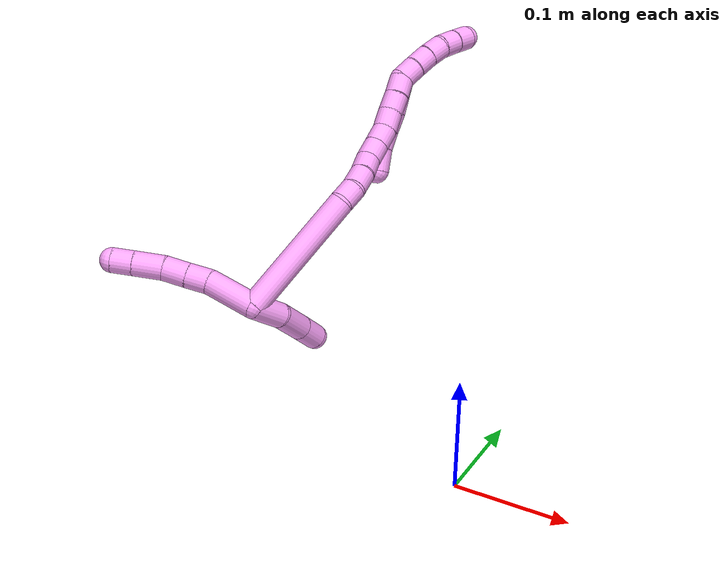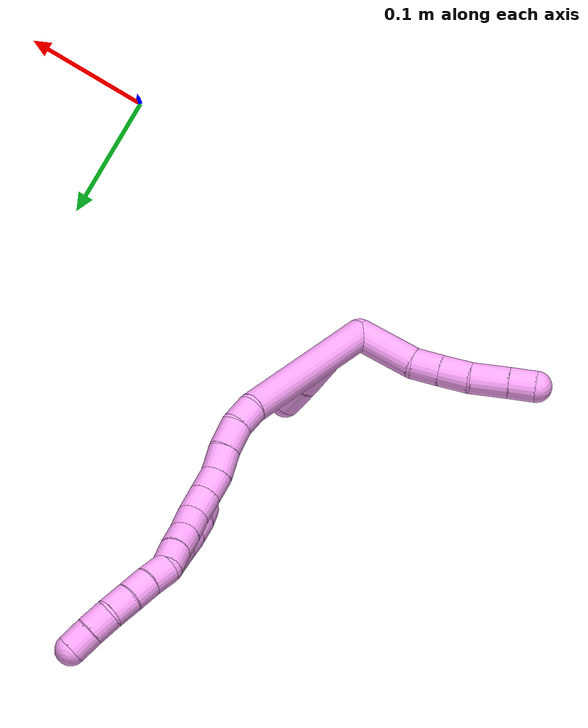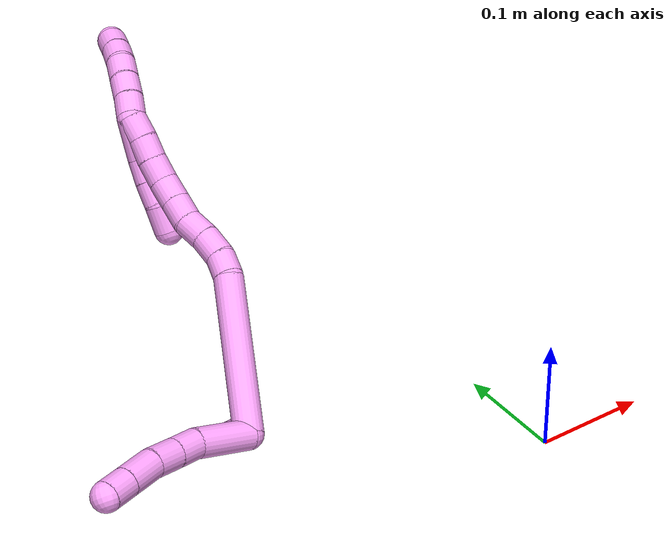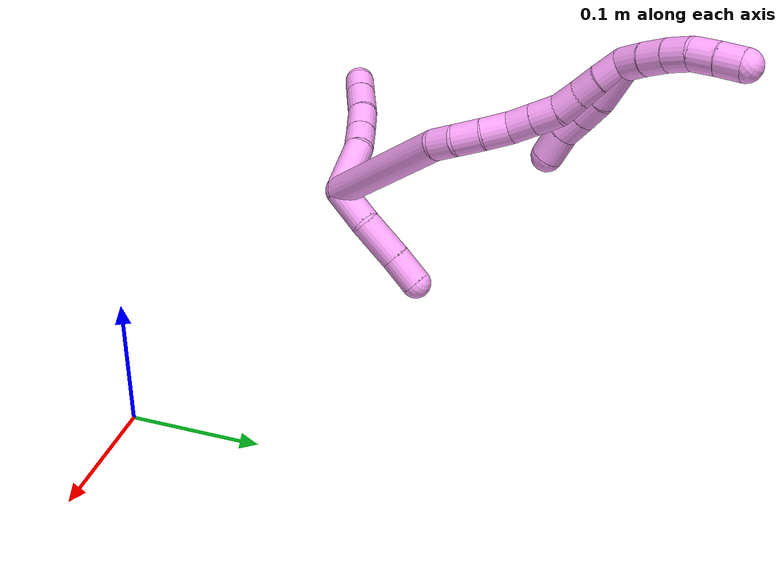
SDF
<sdf version="1.7">
 <world name="default">
  <model name="photoneo_s_sensor">
   <static>1</static>
   <pose>0 0 2 1.57079 1.57079 3.14159</pose>
   <link name="link">
    <inertial><mass>0.1</mass></inertial>
    <sensor name="sensor" type="depth">
     <update_rate>30</update_rate>
     <camera>
      <horizontal_fov>1.22</horizontal_fov>
      <image><width>1920</width><height>1200</height><format>B8G8R8</format></image>
      <clip><near>0.1</near><far>4</far></clip>
      <depth_camera><output>points</output></depth_camera>
     </camera>
     <plugin name="camera_plugin" filename="libgazebo_ros_depth_camera.so">
      <baseline>0.2</baseline>
      <alwaysOn>1</alwaysOn>
      <updateRate>0.0</updateRate>
      <cameraName>camera_ir</cameraName>
      <imageTopicName>/camera/color/image_raw</imageTopicName>
      <cameraInfoTopicName>/camera/color/camera_info</cameraInfoTopicName>
      <depthImageTopicName>/camera/depth/image_raw</depthImageTopicName>
      <depthImageCameraInfoTopicName>/camera/depth/camera_info</depthImageCameraInfoTopicName>
      <pointCloudTopicName>/camera/depth/points</pointCloudTopicName>
      <frameName>fr_optical</frameName>
      <pointCloudCutoff>0.1</pointCloudCutoff>
      <pointCloudCutoffMax>2.0</pointCloudCutoffMax>
      <distortionK1>0</distortionK1>
      <distortionK2>0</distortionK2>
      <distortionK3>0</distortionK3>
      <distortionT1>0</distortionT1>
      <distortionT2>0</distortionT2>
      <CxPrime>0</CxPrime>
      <Cx>0</Cx>
      <Cy>0</Cy>
      <focalLength>0</focalLength>
      <hackBaseline>0</hackBaseline>
     </plugin>
    </sensor>
   </link>
  </model>
  <model name="bin">
   <static>1</static>
   <link name="bottom">
    <collision name="collision-bottom">
     <pose>0 0 -0.01 0 -0 0</pose>
     <geometry><box><size>0.8 0.6 0.02</size></box></geometry>
     <surface>
      <friction><ode><mu>100</mu><mu2>100</mu2></ode></friction>
      <contact><collide_bitmask>65535</collide_bitmask></contact>
     </surface>
    </collision>
   </link>
   <link name="west_wall">
    <collision name="collision-west_wall">
     <pose>-0.41 0 0.1 0 -0 0</pose>
     <geometry><box><size>0.02 0.6 0.2</size></box></geometry>
     <surface>
      <friction><ode><mu>100</mu><mu2>100</mu2></ode></friction>
      <contact><collide_bitmask>65535</collide_bitmask></contact>
     </surface>
    </collision>
   </link>
   <link name="east_wall">
    <collision name="collision-east_wall">
     <pose>0.41 0 0.1 0 -0 0</pose>
     <geometry><box><size>0.02 0.6 0.2</size></box></geometry>
     <surface>
      <friction><ode><mu>100</mu><mu2>100</mu2></ode></friction>
      <contact><collide_bitmask>65535</collide_bitmask></contact>
     </surface>
    </collision>
   </link>
   <link name="south_wall">
    <collision name="collision-south_wall">
     <pose>0 -0.31 0.1 0 -0 0</pose>
     <geometry><box><size>0.8 0.02 0.2</size></box></geometry>
     <surface>
      <friction><ode><mu>100</mu><mu2>100</mu2></ode></friction>
      <contact><collide_bitmask>65535</collide_bitmask></contact>
     </surface>
    </collision>
   </link>
   <link name="north_wall">
    <collision name="collision-north_wall">
     <pose>0 0.31 0.1 0 -0 0</pose>
     <geometry><box><size>0.8 0.02 0.2</size></box></geometry>
     <surface>
      <friction><ode><mu>100</mu><mu2>100</mu2></ode></friction>
      <contact><collide_bitmask>65535</collide_bitmask></contact>
     </surface>
    </collision>
   </link>
  </model>
  <model name="4">
   <static>0</static>
   <link name="4">
    <collision name="collision-cylinder-e_1_2_8">
     <pose>-0.022665 -0.010668 -0.003351 1.87515 -1.11249 -1.40547</pose>
     <geometry><cylinder><radius>0.0125</radius><length>0.050547</length></cylinder></geometry>
     <surface>
      <friction><ode><mu>1.16</mu><mu2>1.16</mu2><slip1>0</slip1><slip2>0</slip2></ode></friction>
      <contact><ode><kp>1e+06</kp><kd>1</kd><max_vel>0</max_vel><min_depth>0.001</min_depth></ode></contact>
     </surface>
    </collision>
    <visual name="visual-cylinder-e_1_2_8">
     <pose>-0.022665 -0.010668 -0.003351 1.87515 -1.11249 -1.40547</pose>
     <geometry><cylinder><radius>0.0125</radius><length>0.050547</length></cylinder></geometry>
     <material><ambient>1 0.65098 0.996078 1</ambient></material>
    </visual>
    <collision name="collision-cylinder-e_2_8_9">
     <pose>-0.056059 -0.025058 -0.005591 1.28084 -1.22342 -0.963332</pose>
     <geometry><cylinder><radius>0.0125</radius><length>0.022819</length></cylinder></geometry>
     <surface>
      <friction><ode><mu>1.16</mu><mu2>1.16</mu2><slip1>0</slip1><slip2>0</slip2></ode></friction>
      <contact><ode><kp>1e+06</kp><kd>1</kd><max_vel>0</max_vel><min_depth>0.001</min_depth></ode></contact>
     </surface>
    </collision>
    <visual name="visual-cylinder-e_2_8_9">
     <pose>-0.056059 -0.025058 -0.005591 1.28084 -1.22342 -0.963332</pose>
     <geometry><cylinder><radius>0.0125</radius><length>0.022819</length></cylinder></geometry>
     <material><ambient>1 0.65098 0.996078 1</ambient></material>
    </visual>
    <collision name="collision-cylinder-e_3_9_10">
     <pose>-0.0785 -0.032359 -0.00348 1.29804 -1.26359 -1.0137</pose>
     <geometry><cylinder><radius>0.0125</radius><length>0.024578</length></cylinder></geometry>
     <surface>
      <friction><ode><mu>1.16</mu><mu2>1.16</mu2><slip1>0</slip1><slip2>0</slip2></ode></friction>
      <contact><ode><kp>1e+06</kp><kd>1</kd><max_vel>0</max_vel><min_depth>0.001</min_depth></ode></contact>
     </surface>
    </collision>
    <visual name="visual-cylinder-e_3_9_10">
     <pose>-0.0785 -0.032359 -0.00348 1.29804 -1.26359 -1.0137</pose>
     <geometry><cylinder><radius>0.0125</radius><length>0.024578</length></cylinder></geometry>
     <material><ambient>1 0.65098 0.996078 1</ambient></material>
    </visual>
    <collision name="collision-cylinder-e_4_10_11">
     <pose>-0.104465 -0.039874 0.001143 0.827131 -1.21174 -0.590335</pose>
     <geometry><cylinder><radius>0.0125</radius><length>0.030444</length></cylinder></geometry>
     <surface>
      <friction><ode><mu>1.16</mu><mu2>1.16</mu2><slip1>0</slip1><slip2>0</slip2></ode></friction>
      <contact><ode><kp>1e+06</kp><kd>1</kd><max_vel>0</max_vel><min_depth>0.001</min_depth></ode></contact>
     </surface>
    </collision>
    <visual name="visual-cylinder-e_4_10_11">
     <pose>-0.104465 -0.039874 0.001143 0.827131 -1.21174 -0.590335</pose>
     <geometry><cylinder><radius>0.0125</radius><length>0.030444</length></cylinder></geometry>
     <material><ambient>1 0.65098 0.996078 1</ambient></material>
    </visual>
    <collision name="collision-cylinder-e_5_11_6">
     <pose>-0.128786 -0.046772 0.007335 0.85556 -1.19939 -0.604348</pose>
     <geometry><cylinder><radius>0.0125</radius><length>0.021612</length></cylinder></geometry>
     <surface>
      <friction><ode><mu>1.16</mu><mu2>1.16</mu2><slip1>0</slip1><slip2>0</slip2></ode></friction>
      <contact><ode><kp>1e+06</kp><kd>1</kd><max_vel>0</max_vel><min_depth>0.001</min_depth></ode></contact>
     </surface>
    </collision>
    <visual name="visual-cylinder-e_5_11_6">
     <pose>-0.128786 -0.046772 0.007335 0.85556 -1.19939 -0.604348</pose>
     <geometry><cylinder><radius>0.0125</radius><length>0.021612</length></cylinder></geometry>
     <material><ambient>1 0.65098 0.996078 1</ambient></material>
    </visual>
    <collision name="collision-cylinder-e_1_2_12">
     <pose>0.014803 -0.008954 -0.002457 1.83858 1.01056 1.25514</pose>
     <geometry><cylinder><radius>0.0125</radius><length>0.034948</length></cylinder></geometry>
     <surface>
      <friction><ode><mu>1.16</mu><mu2>1.16</mu2><slip1>0</slip1><slip2>0</slip2></ode></friction>
      <contact><ode><kp>1e+06</kp><kd>1</kd><max_vel>0</max_vel><min_depth>0.001</min_depth></ode></contact>
     </surface>
    </collision>
    <visual name="visual-cylinder-e_1_2_12">
     <pose>0.014803 -0.008954 -0.002457 1.83858 1.01056 1.25514</pose>
     <geometry><cylinder><radius>0.0125</radius><length>0.034948</length></cylinder></geometry>
     <material><ambient>1 0.65098 0.996078 1</ambient></material>
    </visual>
    <collision name="collision-cylinder-e_2_12_13">
     <pose>0.043096 -0.030941 -0.00537 1.6058 0.802407 0.827888</pose>
     <geometry><cylinder><radius>0.0125</radius><length>0.037526</length></cylinder></geometry>
     <surface>
      <friction><ode><mu>1.16</mu><mu2>1.16</mu2><slip1>0</slip1><slip2>0</slip2></ode></friction>
      <contact><ode><kp>1e+06</kp><kd>1</kd><max_vel>0</max_vel><min_depth>0.001</min_depth></ode></contact>
     </surface>
    </collision>
    <visual name="visual-cylinder-e_2_12_13">
     <pose>0.043096 -0.030941 -0.00537 1.6058 0.802407 0.827888</pose>
     <geometry><cylinder><radius>0.0125</radius><length>0.037526</length></cylinder></geometry>
     <material><ambient>1 0.65098 0.996078 1</ambient></material>
    </visual>
    <collision name="collision-cylinder-e_3_13_5">
     <pose>0.066842 -0.053152 -0.00588 1.57656 0.840636 0.84494</pose>
     <geometry><cylinder><radius>0.0125</radius><length>0.027526</length></cylinder></geometry>
     <surface>
      <friction><ode><mu>1.16</mu><mu2>1.16</mu2><slip1>0</slip1><slip2>0</slip2></ode></friction>
      <contact><ode><kp>1e+06</kp><kd>1</kd><max_vel>0</max_vel><min_depth>0.001</min_depth></ode></contact>
     </surface>
    </collision>
    <visual name="visual-cylinder-e_3_13_5">
     <pose>0.066842 -0.053152 -0.00588 1.57656 0.840636 0.84494</pose>
     <geometry><cylinder><radius>0.0125</radius><length>0.027526</length></cylinder></geometry>
     <material><ambient>1 0.65098 0.996078 1</ambient></material>
    </visual>
    <collision name="collision-cylinder-e_1_2_14">
     <pose>0.018438 0.00418 -0.063395 -3.07575 0.282458 -2.68637</pose>
     <geometry><cylinder><radius>0.0125</radius><length>0.132308</length></cylinder></geometry>
     <surface>
      <friction><ode><mu>1.16</mu><mu2>1.16</mu2><slip1>0</slip1><slip2>0</slip2></ode></friction>
      <contact><ode><kp>1e+06</kp><kd>1</kd><max_vel>0</max_vel><min_depth>0.001</min_depth></ode></contact>
     </surface>
    </collision>
    <visual name="visual-cylinder-e_1_2_14">
     <pose>0.018438 0.00418 -0.063395 -3.07575 0.282458 -2.68637</pose>
     <geometry><cylinder><radius>0.0125</radius><length>0.132308</length></cylinder></geometry>
     <material><ambient>1 0.65098 0.996078 1</ambient></material>
    </visual>
    <collision name="collision-cylinder-e_2_14_15">
     <pose>0.040004 0.006129 -0.136046 2.90506 0.317367 1.86423</pose>
     <geometry><cylinder><radius>0.0125</radius><length>0.020045</length></cylinder></geometry>
     <surface>
      <friction><ode><mu>1.16</mu><mu2>1.16</mu2><slip1>0</slip1><slip2>0</slip2></ode></friction>
      <contact><ode><kp>1e+06</kp><kd>1</kd><max_vel>0</max_vel><min_depth>0.001</min_depth></ode></contact>
     </surface>
    </collision>
    <visual name="visual-cylinder-e_2_14_15">
     <pose>0.040004 0.006129 -0.136046 2.90506 0.317367 1.86423</pose>
     <geometry><cylinder><radius>0.0125</radius><length>0.020045</length></cylinder></geometry>
     <material><ambient>1 0.65098 0.996078 1</ambient></material>
    </visual>
    <collision name="collision-cylinder-e_3_15_16">
     <pose>0.045106 -0.001046 -0.155255 2.68053 0.175811 0.718434</pose>
     <geometry><cylinder><radius>0.0125</radius><length>0.022572</length></cylinder></geometry>
     <surface>
      <friction><ode><mu>1.16</mu><mu2>1.16</mu2><slip1>0</slip1><slip2>0</slip2></ode></friction>
      <contact><ode><kp>1e+06</kp><kd>1</kd><max_vel>0</max_vel><min_depth>0.001</min_depth></ode></contact>
     </surface>
    </collision>
    <visual name="visual-cylinder-e_3_15_16">
     <pose>0.045106 -0.001046 -0.155255 2.68053 0.175811 0.718434</pose>
     <geometry><cylinder><radius>0.0125</radius><length>0.022572</length></cylinder></geometry>
     <material><ambient>1 0.65098 0.996078 1</ambient></material>
    </visual>
    <collision name="collision-cylinder-e_4_16_17">
     <pose>0.047883 -0.011966 -0.174443 2.56735 0.072861 0.245621</pose>
     <geometry><cylinder><radius>0.0125</radius><length>0.02206</length></cylinder></geometry>
     <surface>
      <friction><ode><mu>1.16</mu><mu2>1.16</mu2><slip1>0</slip1><slip2>0</slip2></ode></friction>
      <contact><ode><kp>1e+06</kp><kd>1</kd><max_vel>0</max_vel><min_depth>0.001</min_depth></ode></contact>
     </surface>
    </collision>
    <visual name="visual-cylinder-e_4_16_17">
     <pose>0.047883 -0.011966 -0.174443 2.56735 0.072861 0.245621</pose>
     <geometry><cylinder><radius>0.0125</radius><length>0.02206</length></cylinder></geometry>
     <material><ambient>1 0.65098 0.996078 1</ambient></material>
    </visual>
    <collision name="collision-cylinder-e_5_17_18">
     <pose>0.050102 -0.02101 -0.193363 2.83477 0.138545 0.843579</pose>
     <geometry><cylinder><radius>0.0125</radius><length>0.020513</length></cylinder></geometry>
     <surface>
      <friction><ode><mu>1.16</mu><mu2>1.16</mu2><slip1>0</slip1><slip2>0</slip2></ode></friction>
      <contact><ode><kp>1e+06</kp><kd>1</kd><max_vel>0</max_vel><min_depth>0.001</min_depth></ode></contact>
     </surface>
    </collision>
    <visual name="visual-cylinder-e_5_17_18">
     <pose>0.050102 -0.02101 -0.193363 2.83477 0.138545 0.843579</pose>
     <geometry><cylinder><radius>0.0125</radius><length>0.020513</length></cylinder></geometry>
     <material><ambient>1 0.65098 0.996078 1</ambient></material>
    </visual>
    <collision name="collision-cylinder-e_6_18_19">
     <pose>0.05295 -0.027282 -0.213136 2.83406 0.134397 0.819314</pose>
     <geometry><cylinder><radius>0.0125</radius><length>0.021362</length></cylinder></geometry>
     <surface>
      <friction><ode><mu>1.16</mu><mu2>1.16</mu2><slip1>0</slip1><slip2>0</slip2></ode></friction>
      <contact><ode><kp>1e+06</kp><kd>1</kd><max_vel>0</max_vel><min_depth>0.001</min_depth></ode></contact>
     </surface>
    </collision>
    <visual name="visual-cylinder-e_6_18_19">
     <pose>0.05295 -0.027282 -0.213136 2.83406 0.134397 0.819314</pose>
     <geometry><cylinder><radius>0.0125</radius><length>0.021362</length></cylinder></geometry>
     <material><ambient>1 0.65098 0.996078 1</ambient></material>
    </visual>
    <collision name="collision-cylinder-e_7_19_20">
     <pose>0.053712 -0.032025 -0.233577 2.994 -0.063845 -0.815467</pose>
     <geometry><cylinder><radius>0.0125</radius><length>0.020977</length></cylinder></geometry>
     <surface>
      <friction><ode><mu>1.16</mu><mu2>1.16</mu2><slip1>0</slip1><slip2>0</slip2></ode></friction>
      <contact><ode><kp>1e+06</kp><kd>1</kd><max_vel>0</max_vel><min_depth>0.001</min_depth></ode></contact>
     </surface>
    </collision>
    <visual name="visual-cylinder-e_7_19_20">
     <pose>0.053712 -0.032025 -0.233577 2.994 -0.063845 -0.815467</pose>
     <geometry><cylinder><radius>0.0125</radius><length>0.020977</length></cylinder></geometry>
     <material><ambient>1 0.65098 0.996078 1</ambient></material>
    </visual>
    <collision name="collision-cylinder-e_8_20_21">
     <pose>0.052688 -0.034291 -0.25394 3.06909 -0.035339 -0.906855</pose>
     <geometry><cylinder><radius>0.0125</radius><length>0.020086</length></cylinder></geometry>
     <surface>
      <friction><ode><mu>1.16</mu><mu2>1.16</mu2><slip1>0</slip1><slip2>0</slip2></ode></friction>
      <contact><ode><kp>1e+06</kp><kd>1</kd><max_vel>0</max_vel><min_depth>0.001</min_depth></ode></contact>
     </surface>
    </collision>
    <visual name="visual-cylinder-e_8_20_21">
     <pose>0.052688 -0.034291 -0.25394 3.06909 -0.035339 -0.906855</pose>
     <geometry><cylinder><radius>0.0125</radius><length>0.020086</length></cylinder></geometry>
     <material><ambient>1 0.65098 0.996078 1</ambient></material>
    </visual>
    <collision name="collision-cylinder-e_9_21_1">
     <pose>0.051666 -0.036532 -0.273852 2.98992 -0.066534 -0.825627</pose>
     <geometry><cylinder><radius>0.0125</radius><length>0.020077</length></cylinder></geometry>
     <surface>
      <friction><ode><mu>1.16</mu><mu2>1.16</mu2><slip1>0</slip1><slip2>0</slip2></ode></friction>
      <contact><ode><kp>1e+06</kp><kd>1</kd><max_vel>0</max_vel><min_depth>0.001</min_depth></ode></contact>
     </surface>
    </collision>
    <visual name="visual-cylinder-e_9_21_1">
     <pose>0.051666 -0.036532 -0.273852 2.98992 -0.066534 -0.825627</pose>
     <geometry><cylinder><radius>0.0125</radius><length>0.020077</length></cylinder></geometry>
     <material><ambient>1 0.65098 0.996078 1</ambient></material>
    </visual>
    <collision name="collision-cylinder-e_1_1_22">
     <pose>0.054906 -0.038546 -0.292944 3.08712 0.401489 2.87543</pose>
     <geometry><cylinder><radius>0.0125</radius><length>0.02</length></cylinder></geometry>
     <surface>
      <friction><ode><mu>1.16</mu><mu2>1.16</mu2><slip1>0</slip1><slip2>0</slip2></ode></friction>
      <contact><ode><kp>1e+06</kp><kd>1</kd><max_vel>0</max_vel><min_depth>0.001</min_depth></ode></contact>
     </surface>
    </collision>
    <visual name="visual-cylinder-e_1_1_22">
     <pose>0.054906 -0.038546 -0.292944 3.08712 0.401489 2.87543</pose>
     <geometry><cylinder><radius>0.0125</radius><length>0.02</length></cylinder></geometry>
     <material><ambient>1 0.65098 0.996078 1</ambient></material>
    </visual>
    <collision name="collision-cylinder-e_2_22_23">
     <pose>0.062887 -0.040414 -0.311166 2.99137 0.419458 2.46196</pose>
     <geometry><cylinder><radius>0.0125</radius><length>0.02</length></cylinder></geometry>
     <surface>
      <friction><ode><mu>1.16</mu><mu2>1.16</mu2><slip1>0</slip1><slip2>0</slip2></ode></friction>
      <contact><ode><kp>1e+06</kp><kd>1</kd><max_vel>0</max_vel><min_depth>0.001</min_depth></ode></contact>
     </surface>
    </collision>
    <visual name="visual-cylinder-e_2_22_23">
     <pose>0.062887 -0.040414 -0.311166 2.99137 0.419458 2.46196</pose>
     <geometry><cylinder><radius>0.0125</radius><length>0.02</length></cylinder></geometry>
     <material><ambient>1 0.65098 0.996078 1</ambient></material>
    </visual>
    <collision name="collision-cylinder-e_3_23_24">
     <pose>0.071738 -0.043622 -0.328785 2.93047 0.498262 2.35236</pose>
     <geometry><cylinder><radius>0.0125</radius><length>0.02</length></cylinder></geometry>
     <surface>
      <friction><ode><mu>1.16</mu><mu2>1.16</mu2><slip1>0</slip1><slip2>0</slip2></ode></friction>
      <contact><ode><kp>1e+06</kp><kd>1</kd><max_vel>0</max_vel><min_depth>0.001</min_depth></ode></contact>
     </surface>
    </collision>
    <visual name="visual-cylinder-e_3_23_24">
     <pose>0.071738 -0.043622 -0.328785 2.93047 0.498262 2.35236</pose>
     <geometry><cylinder><radius>0.0125</radius><length>0.02</length></cylinder></geometry>
     <material><ambient>1 0.65098 0.996078 1</ambient></material>
    </visual>
    <collision name="collision-cylinder-e_4_24_25">
     <pose>0.0825 -0.048968 -0.34458 2.68879 0.641298 1.92876</pose>
     <geometry><cylinder><radius>0.0125</radius><length>0.02</length></cylinder></geometry>
     <surface>
      <friction><ode><mu>1.16</mu><mu2>1.16</mu2><slip1>0</slip1><slip2>0</slip2></ode></friction>
      <contact><ode><kp>1e+06</kp><kd>1</kd><max_vel>0</max_vel><min_depth>0.001</min_depth></ode></contact>
     </surface>
    </collision>
    <visual name="visual-cylinder-e_4_24_25">
     <pose>0.0825 -0.048968 -0.34458 2.68879 0.641298 1.92876</pose>
     <geometry><cylinder><radius>0.0125</radius><length>0.02</length></cylinder></geometry>
     <material><ambient>1 0.65098 0.996078 1</ambient></material>
    </visual>
    <collision name="collision-cylinder-e_5_25_4">
     <pose>0.094495 -0.056607 -0.358624 2.5979 0.645147 1.75138</pose>
     <geometry><cylinder><radius>0.0125</radius><length>0.02</length></cylinder></geometry>
     <surface>
      <friction><ode><mu>1.16</mu><mu2>1.16</mu2><slip1>0</slip1><slip2>0</slip2></ode></friction>
      <contact><ode><kp>1e+06</kp><kd>1</kd><max_vel>0</max_vel><min_depth>0.001</min_depth></ode></contact>
     </surface>
    </collision>
    <visual name="visual-cylinder-e_5_25_4">
     <pose>0.094495 -0.056607 -0.358624 2.5979 0.645147 1.75138</pose>
     <geometry><cylinder><radius>0.0125</radius><length>0.02</length></cylinder></geometry>
     <material><ambient>1 0.65098 0.996078 1</ambient></material>
    </visual>
    <collision name="collision-cylinder-e_1_1_26">
     <pose>0.05426 -0.0412 -0.26659 0.181813 0.184789 0.016893</pose>
     <geometry><cylinder><radius>0.0125</radius><length>0.035505</length></cylinder></geometry>
     <surface>
      <friction><ode><mu>1.16</mu><mu2>1.16</mu2><slip1>0</slip1><slip2>0</slip2></ode></friction>
      <contact><ode><kp>1e+06</kp><kd>1</kd><max_vel>0</max_vel><min_depth>0.001</min_depth></ode></contact>
     </surface>
    </collision>
    <visual name="visual-cylinder-e_1_1_26">
     <pose>0.05426 -0.0412 -0.26659 0.181813 0.184789 0.016893</pose>
     <geometry><cylinder><radius>0.0125</radius><length>0.035505</length></cylinder></geometry>
     <material><ambient>1 0.65098 0.996078 1</ambient></material>
    </visual>
    <collision name="collision-cylinder-e_2_26_27">
     <pose>0.05805 -0.044849 -0.239171 0.048047 0.051346 0.001234</pose>
     <geometry><cylinder><radius>0.0125</radius><length>0.020564</length></cylinder></geometry>
     <surface>
      <friction><ode><mu>1.16</mu><mu2>1.16</mu2><slip1>0</slip1><slip2>0</slip2></ode></friction>
      <contact><ode><kp>1e+06</kp><kd>1</kd><max_vel>0</max_vel><min_depth>0.001</min_depth></ode></contact>
     </surface>
    </collision>
    <visual name="visual-cylinder-e_2_26_27">
     <pose>0.05805 -0.044849 -0.239171 0.048047 0.051346 0.001234</pose>
     <geometry><cylinder><radius>0.0125</radius><length>0.020564</length></cylinder></geometry>
     <material><ambient>1 0.65098 0.996078 1</ambient></material>
    </visual>
    <collision name="collision-cylinder-e_3_27_28">
     <pose>0.059356 -0.045146 -0.218718 -0.019194 0.076167 -0.000731</pose>
     <geometry><cylinder><radius>0.0125</radius><length>0.020455</length></cylinder></geometry>
     <surface>
      <friction><ode><mu>1.16</mu><mu2>1.16</mu2><slip1>0</slip1><slip2>0</slip2></ode></friction>
      <contact><ode><kp>1e+06</kp><kd>1</kd><max_vel>0</max_vel><min_depth>0.001</min_depth></ode></contact>
     </surface>
    </collision>
    <visual name="visual-cylinder-e_3_27_28">
     <pose>0.059356 -0.045146 -0.218718 -0.019194 0.076167 -0.000731</pose>
     <geometry><cylinder><radius>0.0125</radius><length>0.020455</length></cylinder></geometry>
     <material><ambient>1 0.65098 0.996078 1</ambient></material>
    </visual>
    <collision name="collision-cylinder-e_4_28_3">
     <pose>0.063322 -0.046433 -0.197324 0.131634 0.275077 0.018246</pose>
     <geometry><cylinder><radius>0.0125</radius><length>0.023476</length></cylinder></geometry>
     <surface>
      <friction><ode><mu>1.16</mu><mu2>1.16</mu2><slip1>0</slip1><slip2>0</slip2></ode></friction>
      <contact><ode><kp>1e+06</kp><kd>1</kd><max_vel>0</max_vel><min_depth>0.001</min_depth></ode></contact>
     </surface>
    </collision>
    <visual name="visual-cylinder-e_4_28_3">
     <pose>0.063322 -0.046433 -0.197324 0.131634 0.275077 0.018246</pose>
     <geometry><cylinder><radius>0.0125</radius><length>0.023476</length></cylinder></geometry>
     <material><ambient>1 0.65098 0.996078 1</ambient></material>
    </visual>
    <collision name="collision-sphere-3">
     <pose>0.06651 -0.047916 -0.186125 0 -0 0</pose>
     <geometry><sphere><radius>0.0125</radius></sphere></geometry>
     <surface>
      <friction><ode><mu>1.16</mu><mu2>1.16</mu2><slip1>0</slip1><slip2>0</slip2></ode></friction>
      <contact><ode><kp>1e+06</kp><kd>1</kd><max_vel>0</max_vel><min_depth>0.001</min_depth></ode></contact>
     </surface>
    </collision>
    <visual name="visual-sphere-3">
     <pose>0.06651 -0.047916 -0.186125 0 -0 0</pose>
     <geometry><sphere><radius>0.0125</radius></sphere></geometry>
     <material><ambient>1 0.65098 0.996078 1</ambient></material>
    </visual>
    <collision name="collision-sphere-28">
     <pose>0.060134 -0.044951 -0.208523 0 -0 0</pose>
     <geometry><sphere><radius>0.0125</radius></sphere></geometry>
     <surface>
      <friction><ode><mu>1.16</mu><mu2>1.16</mu2><slip1>0</slip1><slip2>0</slip2></ode></friction>
      <contact><ode><kp>1e+06</kp><kd>1</kd><max_vel>0</max_vel><min_depth>0.001</min_depth></ode></contact>
     </surface>
    </collision>
    <visual name="visual-sphere-28">
     <pose>0.060134 -0.044951 -0.208523 0 -0 0</pose>
     <geometry><sphere><radius>0.0125</radius></sphere></geometry>
     <material><ambient>1 0.65098 0.996078 1</ambient></material>
    </visual>
    <collision name="collision-sphere-27">
     <pose>0.058577 -0.045342 -0.228914 0 -0 0</pose>
     <geometry><sphere><radius>0.0125</radius></sphere></geometry>
     <surface>
      <friction><ode><mu>1.16</mu><mu2>1.16</mu2><slip1>0</slip1><slip2>0</slip2></ode></friction>
      <contact><ode><kp>1e+06</kp><kd>1</kd><max_vel>0</max_vel><min_depth>0.001</min_depth></ode></contact>
     </surface>
    </collision>
    <visual name="visual-sphere-27">
     <pose>0.058577 -0.045342 -0.228914 0 -0 0</pose>
     <geometry><sphere><radius>0.0125</radius></sphere></geometry>
     <material><ambient>1 0.65098 0.996078 1</ambient></material>
    </visual>
    <collision name="collision-sphere-26">
     <pose>0.057522 -0.044356 -0.249427 0 -0 0</pose>
     <geometry><sphere><radius>0.0125</radius></sphere></geometry>
     <surface>
      <friction><ode><mu>1.16</mu><mu2>1.16</mu2><slip1>0</slip1><slip2>0</slip2></ode></friction>
      <contact><ode><kp>1e+06</kp><kd>1</kd><max_vel>0</max_vel><min_depth>0.001</min_depth></ode></contact>
     </surface>
    </collision>
    <visual name="visual-sphere-26">
     <pose>0.057522 -0.044356 -0.249427 0 -0 0</pose>
     <geometry><sphere><radius>0.0125</radius></sphere></geometry>
     <material><ambient>1 0.65098 0.996078 1</ambient></material>
    </visual>
    <collision name="collision-sphere-4">
     <pose>0.100508 -0.060741 -0.365461 0 -0 0</pose>
     <geometry><sphere><radius>0.0125</radius></sphere></geometry>
     <surface>
      <friction><ode><mu>1.16</mu><mu2>1.16</mu2><slip1>0</slip1><slip2>0</slip2></ode></friction>
      <contact><ode><kp>1e+06</kp><kd>1</kd><max_vel>0</max_vel><min_depth>0.001</min_depth></ode></contact>
     </surface>
    </collision>
    <visual name="visual-sphere-4">
     <pose>0.100508 -0.060741 -0.365461 0 -0 0</pose>
     <geometry><sphere><radius>0.0125</radius></sphere></geometry>
     <material><ambient>1 0.65098 0.996078 1</ambient></material>
    </visual>
    <collision name="collision-sphere-25">
     <pose>0.088482 -0.052474 -0.351786 0 -0 0</pose>
     <geometry><sphere><radius>0.0125</radius></sphere></geometry>
     <surface>
      <friction><ode><mu>1.16</mu><mu2>1.16</mu2><slip1>0</slip1><slip2>0</slip2></ode></friction>
      <contact><ode><kp>1e+06</kp><kd>1</kd><max_vel>0</max_vel><min_depth>0.001</min_depth></ode></contact>
     </surface>
    </collision>
    <visual name="visual-sphere-25">
     <pose>0.088482 -0.052474 -0.351786 0 -0 0</pose>
     <geometry><sphere><radius>0.0125</radius></sphere></geometry>
     <material><ambient>1 0.65098 0.996078 1</ambient></material>
    </visual>
    <collision name="collision-sphere-24">
     <pose>0.076517 -0.045463 -0.337374 0 -0 0</pose>
     <geometry><sphere><radius>0.0125</radius></sphere></geometry>
     <surface>
      <friction><ode><mu>1.16</mu><mu2>1.16</mu2><slip1>0</slip1><slip2>0</slip2></ode></friction>
      <contact><ode><kp>1e+06</kp><kd>1</kd><max_vel>0</max_vel><min_depth>0.001</min_depth></ode></contact>
     </surface>
    </collision>
    <visual name="visual-sphere-24">
     <pose>0.076517 -0.045463 -0.337374 0 -0 0</pose>
     <geometry><sphere><radius>0.0125</radius></sphere></geometry>
     <material><ambient>1 0.65098 0.996078 1</ambient></material>
    </visual>
    <collision name="collision-sphere-23">
     <pose>0.066959 -0.041781 -0.320196 0 -0 0</pose>
     <geometry><sphere><radius>0.0125</radius></sphere></geometry>
     <surface>
      <friction><ode><mu>1.16</mu><mu2>1.16</mu2><slip1>0</slip1><slip2>0</slip2></ode></friction>
      <contact><ode><kp>1e+06</kp><kd>1</kd><max_vel>0</max_vel><min_depth>0.001</min_depth></ode></contact>
     </surface>
    </collision>
    <visual name="visual-sphere-23">
     <pose>0.066959 -0.041781 -0.320196 0 -0 0</pose>
     <geometry><sphere><radius>0.0125</radius></sphere></geometry>
     <material><ambient>1 0.65098 0.996078 1</ambient></material>
    </visual>
    <collision name="collision-sphere-22">
     <pose>0.058814 -0.039047 -0.302136 0 -0 0</pose>
     <geometry><sphere><radius>0.0125</radius></sphere></geometry>
     <surface>
      <friction><ode><mu>1.16</mu><mu2>1.16</mu2><slip1>0</slip1><slip2>0</slip2></ode></friction>
      <contact><ode><kp>1e+06</kp><kd>1</kd><max_vel>0</max_vel><min_depth>0.001</min_depth></ode></contact>
     </surface>
    </collision>
    <visual name="visual-sphere-22">
     <pose>0.058814 -0.039047 -0.302136 0 -0 0</pose>
     <geometry><sphere><radius>0.0125</radius></sphere></geometry>
     <material><ambient>1 0.65098 0.996078 1</ambient></material>
    </visual>
    <collision name="collision-sphere-1">
     <pose>0.050998 -0.038045 -0.283753 0 -0 0</pose>
     <geometry><sphere><radius>0.0125</radius></sphere></geometry>
     <surface>
      <friction><ode><mu>1.16</mu><mu2>1.16</mu2><slip1>0</slip1><slip2>0</slip2></ode></friction>
      <contact><ode><kp>1e+06</kp><kd>1</kd><max_vel>0</max_vel><min_depth>0.001</min_depth></ode></contact>
     </surface>
    </collision>
    <visual name="visual-sphere-1">
     <pose>0.050998 -0.038045 -0.283753 0 -0 0</pose>
     <geometry><sphere><radius>0.0125</radius></sphere></geometry>
     <material><ambient>1 0.65098 0.996078 1</ambient></material>
    </visual>
    <collision name="collision-sphere-21">
     <pose>0.052333 -0.035018 -0.26395 0 -0 0</pose>
     <geometry><sphere><radius>0.0125</radius></sphere></geometry>
     <surface>
      <friction><ode><mu>1.16</mu><mu2>1.16</mu2><slip1>0</slip1><slip2>0</slip2></ode></friction>
      <contact><ode><kp>1e+06</kp><kd>1</kd><max_vel>0</max_vel><min_depth>0.001</min_depth></ode></contact>
     </surface>
    </collision>
    <visual name="visual-sphere-21">
     <pose>0.052333 -0.035018 -0.26395 0 -0 0</pose>
     <geometry><sphere><radius>0.0125</radius></sphere></geometry>
     <material><ambient>1 0.65098 0.996078 1</ambient></material>
    </visual>
    <collision name="collision-sphere-6">
     <pose>-0.138855 -0.049732 0.009907 0 -0 0</pose>
     <geometry><sphere><radius>0.0125</radius></sphere></geometry>
     <surface>
      <friction><ode><mu>1.16</mu><mu2>1.16</mu2><slip1>0</slip1><slip2>0</slip2></ode></friction>
      <contact><ode><kp>1e+06</kp><kd>1</kd><max_vel>0</max_vel><min_depth>0.001</min_depth></ode></contact>
     </surface>
    </collision>
    <visual name="visual-sphere-6">
     <pose>-0.138855 -0.049732 0.009907 0 -0 0</pose>
     <geometry><sphere><radius>0.0125</radius></sphere></geometry>
     <material><ambient>1 0.65098 0.996078 1</ambient></material>
    </visual>
    <collision name="collision-sphere-11">
     <pose>-0.118717 -0.043811 0.004764 0 -0 0</pose>
     <geometry><sphere><radius>0.0125</radius></sphere></geometry>
     <surface>
      <friction><ode><mu>1.16</mu><mu2>1.16</mu2><slip1>0</slip1><slip2>0</slip2></ode></friction>
      <contact><ode><kp>1e+06</kp><kd>1</kd><max_vel>0</max_vel><min_depth>0.001</min_depth></ode></contact>
     </surface>
    </collision>
    <visual name="visual-sphere-11">
     <pose>-0.118717 -0.043811 0.004764 0 -0 0</pose>
     <geometry><sphere><radius>0.0125</radius></sphere></geometry>
     <material><ambient>1 0.65098 0.996078 1</ambient></material>
    </visual>
    <collision name="collision-sphere-10">
     <pose>-0.090214 -0.035938 -0.002479 0 -0 0</pose>
     <geometry><sphere><radius>0.0125</radius></sphere></geometry>
     <surface>
      <friction><ode><mu>1.16</mu><mu2>1.16</mu2><slip1>0</slip1><slip2>0</slip2></ode></friction>
      <contact><ode><kp>1e+06</kp><kd>1</kd><max_vel>0</max_vel><min_depth>0.001</min_depth></ode></contact>
     </surface>
    </collision>
    <visual name="visual-sphere-10">
     <pose>-0.090214 -0.035938 -0.002479 0 -0 0</pose>
     <geometry><sphere><radius>0.0125</radius></sphere></geometry>
     <material><ambient>1 0.65098 0.996078 1</ambient></material>
    </visual>
    <collision name="collision-sphere-9">
     <pose>-0.066787 -0.02878 -0.004481 0 -0 0</pose>
     <geometry><sphere><radius>0.0125</radius></sphere></geometry>
     <surface>
      <friction><ode><mu>1.16</mu><mu2>1.16</mu2><slip1>0</slip1><slip2>0</slip2></ode></friction>
      <contact><ode><kp>1e+06</kp><kd>1</kd><max_vel>0</max_vel><min_depth>0.001</min_depth></ode></contact>
     </surface>
    </collision>
    <visual name="visual-sphere-9">
     <pose>-0.066787 -0.02878 -0.004481 0 -0 0</pose>
     <geometry><sphere><radius>0.0125</radius></sphere></geometry>
     <material><ambient>1 0.65098 0.996078 1</ambient></material>
    </visual>
    <collision name="collision-sphere-2">
     <geometry><sphere><radius>0.0125</radius></sphere></geometry>
     <surface>
      <friction><ode><mu>1.16</mu><mu2>1.16</mu2><slip1>0</slip1><slip2>0</slip2></ode></friction>
      <contact><ode><kp>1e+06</kp><kd>1</kd><max_vel>0</max_vel><min_depth>0.001</min_depth></ode></contact>
     </surface>
    </collision>
    <visual name="visual-sphere-2">
     <geometry><sphere><radius>0.0125</radius></sphere></geometry>
     <material><ambient>1 0.65098 0.996078 1</ambient></material>
    </visual>
    <collision name="collision-sphere-19">
     <pose>0.054381 -0.030486 -0.223224 0 -0 0</pose>
     <geometry><sphere><radius>0.0125</radius></sphere></geometry>
     <surface>
      <friction><ode><mu>1.16</mu><mu2>1.16</mu2><slip1>0</slip1><slip2>0</slip2></ode></friction>
      <contact><ode><kp>1e+06</kp><kd>1</kd><max_vel>0</max_vel><min_depth>0.001</min_depth></ode></contact>
     </surface>
    </collision>
    <visual name="visual-sphere-19">
     <pose>0.054381 -0.030486 -0.223224 0 -0 0</pose>
     <geometry><sphere><radius>0.0125</radius></sphere></geometry>
     <material><ambient>1 0.65098 0.996078 1</ambient></material>
    </visual>
    <collision name="collision-sphere-8">
     <pose>-0.04533 -0.021336 -0.006702 0 -0 0</pose>
     <geometry><sphere><radius>0.0125</radius></sphere></geometry>
     <surface>
      <friction><ode><mu>1.16</mu><mu2>1.16</mu2><slip1>0</slip1><slip2>0</slip2></ode></friction>
      <contact><ode><kp>1e+06</kp><kd>1</kd><max_vel>0</max_vel><min_depth>0.001</min_depth></ode></contact>
     </surface>
    </collision>
    <visual name="visual-sphere-8">
     <pose>-0.04533 -0.021336 -0.006702 0 -0 0</pose>
     <geometry><sphere><radius>0.0125</radius></sphere></geometry>
     <material><ambient>1 0.65098 0.996078 1</ambient></material>
    </visual>
    <collision name="collision-sphere-12">
     <pose>0.029605 -0.017909 -0.004914 0 -0 0</pose>
     <geometry><sphere><radius>0.0125</radius></sphere></geometry>
     <surface>
      <friction><ode><mu>1.16</mu><mu2>1.16</mu2><slip1>0</slip1><slip2>0</slip2></ode></friction>
      <contact><ode><kp>1e+06</kp><kd>1</kd><max_vel>0</max_vel><min_depth>0.001</min_depth></ode></contact>
     </surface>
    </collision>
    <visual name="visual-sphere-12">
     <pose>0.029605 -0.017909 -0.004914 0 -0 0</pose>
     <geometry><sphere><radius>0.0125</radius></sphere></geometry>
     <material><ambient>1 0.65098 0.996078 1</ambient></material>
    </visual>
    <collision name="collision-sphere-13">
     <pose>0.056588 -0.043973 -0.005827 0 -0 0</pose>
     <geometry><sphere><radius>0.0125</radius></sphere></geometry>
     <surface>
      <friction><ode><mu>1.16</mu><mu2>1.16</mu2><slip1>0</slip1><slip2>0</slip2></ode></friction>
      <contact><ode><kp>1e+06</kp><kd>1</kd><max_vel>0</max_vel><min_depth>0.001</min_depth></ode></contact>
     </surface>
    </collision>
    <visual name="visual-sphere-13">
     <pose>0.056588 -0.043973 -0.005827 0 -0 0</pose>
     <geometry><sphere><radius>0.0125</radius></sphere></geometry>
     <material><ambient>1 0.65098 0.996078 1</ambient></material>
    </visual>
    <collision name="collision-sphere-5">
     <pose>0.077097 -0.062332 -0.005932 0 -0 0</pose>
     <geometry><sphere><radius>0.0125</radius></sphere></geometry>
     <surface>
      <friction><ode><mu>1.16</mu><mu2>1.16</mu2><slip1>0</slip1><slip2>0</slip2></ode></friction>
      <contact><ode><kp>1e+06</kp><kd>1</kd><max_vel>0</max_vel><min_depth>0.001</min_depth></ode></contact>
     </surface>
    </collision>
    <visual name="visual-sphere-5">
     <pose>0.077097 -0.062332 -0.005932 0 -0 0</pose>
     <geometry><sphere><radius>0.0125</radius></sphere></geometry>
     <material><ambient>1 0.65098 0.996078 1</ambient></material>
    </visual>
    <collision name="collision-sphere-14">
     <pose>0.036877 0.00836 -0.12679 0 -0 0</pose>
     <geometry><sphere><radius>0.0125</radius></sphere></geometry>
     <surface>
      <friction><ode><mu>1.16</mu><mu2>1.16</mu2><slip1>0</slip1><slip2>0</slip2></ode></friction>
      <contact><ode><kp>1e+06</kp><kd>1</kd><max_vel>0</max_vel><min_depth>0.001</min_depth></ode></contact>
     </surface>
    </collision>
    <visual name="visual-sphere-14">
     <pose>0.036877 0.00836 -0.12679 0 -0 0</pose>
     <geometry><sphere><radius>0.0125</radius></sphere></geometry>
     <material><ambient>1 0.65098 0.996078 1</ambient></material>
    </visual>
    <collision name="collision-sphere-15">
     <pose>0.043132 0.003897 -0.145303 0 -0 0</pose>
     <geometry><sphere><radius>0.0125</radius></sphere></geometry>
     <surface>
      <friction><ode><mu>1.16</mu><mu2>1.16</mu2><slip1>0</slip1><slip2>0</slip2></ode></friction>
      <contact><ode><kp>1e+06</kp><kd>1</kd><max_vel>0</max_vel><min_depth>0.001</min_depth></ode></contact>
     </surface>
    </collision>
    <visual name="visual-sphere-15">
     <pose>0.043132 0.003897 -0.145303 0 -0 0</pose>
     <geometry><sphere><radius>0.0125</radius></sphere></geometry>
     <material><ambient>1 0.65098 0.996078 1</ambient></material>
    </visual>
    <collision name="collision-sphere-16">
     <pose>0.04708 -0.00599 -0.165206 0 -0 0</pose>
     <geometry><sphere><radius>0.0125</radius></sphere></geometry>
     <surface>
      <friction><ode><mu>1.16</mu><mu2>1.16</mu2><slip1>0</slip1><slip2>0</slip2></ode></friction>
      <contact><ode><kp>1e+06</kp><kd>1</kd><max_vel>0</max_vel><min_depth>0.001</min_depth></ode></contact>
     </surface>
    </collision>
    <visual name="visual-sphere-16">
     <pose>0.04708 -0.00599 -0.165206 0 -0 0</pose>
     <geometry><sphere><radius>0.0125</radius></sphere></geometry>
     <material><ambient>1 0.65098 0.996078 1</ambient></material>
    </visual>
    <collision name="collision-sphere-17">
     <pose>0.048686 -0.017941 -0.183679 0 -0 0</pose>
     <geometry><sphere><radius>0.0125</radius></sphere></geometry>
     <surface>
      <friction><ode><mu>1.16</mu><mu2>1.16</mu2><slip1>0</slip1><slip2>0</slip2></ode></friction>
      <contact><ode><kp>1e+06</kp><kd>1</kd><max_vel>0</max_vel><min_depth>0.001</min_depth></ode></contact>
     </surface>
    </collision>
    <visual name="visual-sphere-17">
     <pose>0.048686 -0.017941 -0.183679 0 -0 0</pose>
     <geometry><sphere><radius>0.0125</radius></sphere></geometry>
     <material><ambient>1 0.65098 0.996078 1</ambient></material>
    </visual>
    <collision name="collision-sphere-18">
     <pose>0.051519 -0.024078 -0.203047 0 -0 0</pose>
     <geometry><sphere><radius>0.0125</radius></sphere></geometry>
     <surface>
      <friction><ode><mu>1.16</mu><mu2>1.16</mu2><slip1>0</slip1><slip2>0</slip2></ode></friction>
      <contact><ode><kp>1e+06</kp><kd>1</kd><max_vel>0</max_vel><min_depth>0.001</min_depth></ode></contact>
     </surface>
    </collision>
    <visual name="visual-sphere-18">
     <pose>0.051519 -0.024078 -0.203047 0 -0 0</pose>
     <geometry><sphere><radius>0.0125</radius></sphere></geometry>
     <material><ambient>1 0.65098 0.996078 1</ambient></material>
    </visual>
    <collision name="collision-sphere-20">
     <pose>0.053043 -0.033564 -0.24393 0 -0 0</pose>
     <geometry><sphere><radius>0.0125</radius></sphere></geometry>
     <surface>
      <friction><ode><mu>1.16</mu><mu2>1.16</mu2><slip1>0</slip1><slip2>0</slip2></ode></friction>
      <contact><ode><kp>1e+06</kp><kd>1</kd><max_vel>0</max_vel><min_depth>0.001</min_depth></ode></contact>
     </surface>
    </collision>
    <visual name="visual-sphere-20">
     <pose>0.053043 -0.033564 -0.24393 0 -0 0</pose>
     <geometry><sphere><radius>0.0125</radius></sphere></geometry>
     <material><ambient>1 0.65098 0.996078 1</ambient></material>
    </visual>
    <inertial>
     <pose>0.02334 -0.024999 -0.132447 0 -0 0</pose>
     <mass>0.75</mass>
     <inertia>
      <ixx>-0.000223</ixx>
      <ixy>0</ixy>
      <ixz>0</ixz>
      <iyy>0.000122</iyy>
      <iyz>0</iyz>
      <izz>-6.2e-05</izz>
     </inertia>
    </inertial>
   </link>
   <pose>-0.246787 0.072758 0.072904 2.5394 0.458689 0.484026</pose>
  </model>
 </world>
</sdf>
